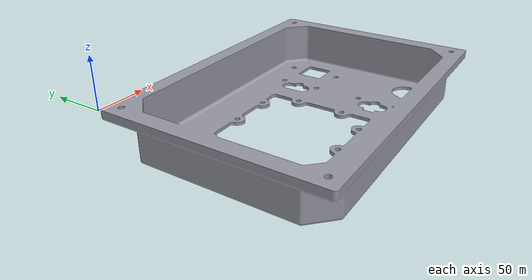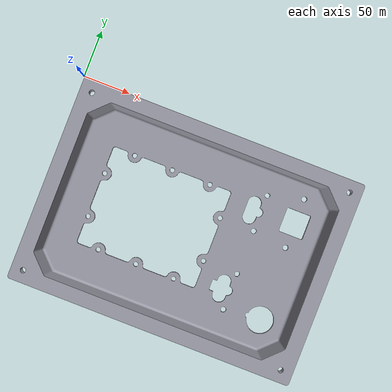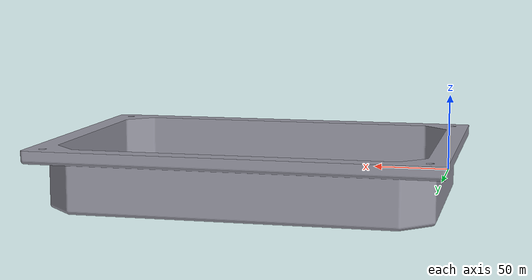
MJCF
<mujoco model="nist_lid">
  <asset>
    <material name="steel_visual_nist_lid" rgba="0.6 0.6 0.65 1.0" specular="0.8" shininess="0.9" reflectance="0.6"/>
    <material name="steel_nist_lid" rgba="0.6 0.6 0.65 0.0" specular="0.8" shininess="0.9" reflectance="0.6"/>
    <mesh name="nist_lid" file="../objects/bigym/nist_lid/collision/nist_lid.obj"/>
    <mesh name="nist_lid_collision_0" file="../objects/bigym/nist_lid/collision/nist_lid_collision_0.obj"/>
    <mesh name="nist_lid_collision_1" file="../objects/bigym/nist_lid/collision/nist_lid_collision_1.obj"/>
    <mesh name="nist_lid_collision_2" file="../objects/bigym/nist_lid/collision/nist_lid_collision_2.obj"/>
    <mesh name="nist_lid_collision_3" file="../objects/bigym/nist_lid/collision/nist_lid_collision_3.obj"/>
    <mesh name="nist_lid_collision_4" file="../objects/bigym/nist_lid/collision/nist_lid_collision_4.obj"/>
    <mesh name="nist_lid_collision_5" file="../objects/bigym/nist_lid/collision/nist_lid_collision_5.obj"/>
    <mesh name="nist_lid_collision_6" file="../objects/bigym/nist_lid/collision/nist_lid_collision_6.obj"/>
    <mesh name="nist_lid_collision_7" file="../objects/bigym/nist_lid/collision/nist_lid_collision_7.obj"/>
    <mesh name="nist_lid_collision_8" file="../objects/bigym/nist_lid/collision/nist_lid_collision_8.obj"/>
    <mesh name="nist_lid_collision_9" file="../objects/bigym/nist_lid/collision/nist_lid_collision_9.obj"/>
    <mesh name="nist_lid_collision_10" file="../objects/bigym/nist_lid/collision/nist_lid_collision_10.obj"/>
    <mesh name="nist_lid_collision_11" file="../objects/bigym/nist_lid/collision/nist_lid_collision_11.obj"/>
    <mesh name="nist_lid_collision_12" file="../objects/bigym/nist_lid/collision/nist_lid_collision_12.obj"/>
    <mesh name="nist_lid_collision_13" file="../objects/bigym/nist_lid/collision/nist_lid_collision_13.obj"/>
    <mesh name="nist_lid_collision_14" file="../objects/bigym/nist_lid/collision/nist_lid_collision_14.obj"/>
    <mesh name="nist_lid_collision_15" file="../objects/bigym/nist_lid/collision/nist_lid_collision_15.obj"/>
    <mesh name="nist_lid_collision_16" file="../objects/bigym/nist_lid/collision/nist_lid_collision_16.obj"/>
    <mesh name="nist_lid_collision_17" file="../objects/bigym/nist_lid/collision/nist_lid_collision_17.obj"/>
    <mesh name="nist_lid_collision_18" file="../objects/bigym/nist_lid/collision/nist_lid_collision_18.obj"/>
    <mesh name="nist_lid_collision_19" file="../objects/bigym/nist_lid/collision/nist_lid_collision_19.obj"/>
    <mesh name="nist_lid_collision_20" file="../objects/bigym/nist_lid/collision/nist_lid_collision_20.obj"/>
    <mesh name="nist_lid_collision_21" file="../objects/bigym/nist_lid/collision/nist_lid_collision_21.obj"/>
    <mesh name="nist_lid_collision_22" file="../objects/bigym/nist_lid/collision/nist_lid_collision_22.obj"/>
    <mesh name="nist_lid_collision_23" file="../objects/bigym/nist_lid/collision/nist_lid_collision_23.obj"/>
    <mesh name="nist_lid_collision_24" file="../objects/bigym/nist_lid/collision/nist_lid_collision_24.obj"/>
    <mesh name="nist_lid_collision_25" file="../objects/bigym/nist_lid/collision/nist_lid_collision_25.obj"/>
    <mesh name="nist_lid_collision_26" file="../objects/bigym/nist_lid/collision/nist_lid_collision_26.obj"/>
    <mesh name="nist_lid_collision_27" file="../objects/bigym/nist_lid/collision/nist_lid_collision_27.obj"/>
    <mesh name="nist_lid_collision_28" file="../objects/bigym/nist_lid/collision/nist_lid_collision_28.obj"/>
    <mesh name="nist_lid_collision_29" file="../objects/bigym/nist_lid/collision/nist_lid_collision_29.obj"/>
    <mesh name="nist_lid_collision_30" file="../objects/bigym/nist_lid/collision/nist_lid_collision_30.obj"/>
    <mesh name="nist_lid_collision_31" file="../objects/bigym/nist_lid/collision/nist_lid_collision_31.obj"/>
    <mesh name="nist_lid_collision_32" file="../objects/bigym/nist_lid/collision/nist_lid_collision_32.obj"/>
    <mesh name="nist_lid_collision_33" file="../objects/bigym/nist_lid/collision/nist_lid_collision_33.obj"/>
    <mesh name="nist_lid_collision_34" file="../objects/bigym/nist_lid/collision/nist_lid_collision_34.obj"/>
    <mesh name="nist_lid_collision_35" file="../objects/bigym/nist_lid/collision/nist_lid_collision_35.obj"/>
    <mesh name="nist_lid_collision_36" file="../objects/bigym/nist_lid/collision/nist_lid_collision_36.obj"/>
    <mesh name="nist_lid_collision_37" file="../objects/bigym/nist_lid/collision/nist_lid_collision_37.obj"/>
    <mesh name="nist_lid_collision_38" file="../objects/bigym/nist_lid/collision/nist_lid_collision_38.obj"/>
    <mesh name="nist_lid_collision_39" file="../objects/bigym/nist_lid/collision/nist_lid_collision_39.obj"/>
    <mesh name="nist_lid_collision_40" file="../objects/bigym/nist_lid/collision/nist_lid_collision_40.obj"/>
    <mesh name="nist_lid_collision_41" file="../objects/bigym/nist_lid/collision/nist_lid_collision_41.obj"/>
    <mesh name="nist_lid_collision_42" file="../objects/bigym/nist_lid/collision/nist_lid_collision_42.obj"/>
    <mesh name="nist_lid_collision_43" file="../objects/bigym/nist_lid/collision/nist_lid_collision_43.obj"/>
    <mesh name="nist_lid_collision_44" file="../objects/bigym/nist_lid/collision/nist_lid_collision_44.obj"/>
    <mesh name="nist_lid_collision_45" file="../objects/bigym/nist_lid/collision/nist_lid_collision_45.obj"/>
    <mesh name="nist_lid_collision_46" file="../objects/bigym/nist_lid/collision/nist_lid_collision_46.obj"/>
    <mesh name="nist_lid_collision_47" file="../objects/bigym/nist_lid/collision/nist_lid_collision_47.obj"/>
    <mesh name="nist_lid_collision_48" file="../objects/bigym/nist_lid/collision/nist_lid_collision_48.obj"/>
    <mesh name="nist_lid_collision_49" file="../objects/bigym/nist_lid/collision/nist_lid_collision_49.obj"/>
    <mesh name="nist_lid_collision_50" file="../objects/bigym/nist_lid/collision/nist_lid_collision_50.obj"/>
    <mesh name="nist_lid_collision_51" file="../objects/bigym/nist_lid/collision/nist_lid_collision_51.obj"/>
    <mesh name="nist_lid_collision_52" file="../objects/bigym/nist_lid/collision/nist_lid_collision_52.obj"/>
    <mesh name="nist_lid_collision_53" file="../objects/bigym/nist_lid/collision/nist_lid_collision_53.obj"/>
    <mesh name="nist_lid_collision_54" file="../objects/bigym/nist_lid/collision/nist_lid_collision_54.obj"/>
    <mesh name="nist_lid_collision_55" file="../objects/bigym/nist_lid/collision/nist_lid_collision_55.obj"/>
    <mesh name="nist_lid_collision_56" file="../objects/bigym/nist_lid/collision/nist_lid_collision_56.obj"/>
    <mesh name="nist_lid_collision_57" file="../objects/bigym/nist_lid/collision/nist_lid_collision_57.obj"/>
    <mesh name="nist_lid_collision_58" file="../objects/bigym/nist_lid/collision/nist_lid_collision_58.obj"/>
    <mesh name="nist_lid_collision_59" file="../objects/bigym/nist_lid/collision/nist_lid_collision_59.obj"/>
    <mesh name="nist_lid_collision_60" file="../objects/bigym/nist_lid/collision/nist_lid_collision_60.obj"/>
    <mesh name="nist_lid_collision_61" file="../objects/bigym/nist_lid/collision/nist_lid_collision_61.obj"/>
    <mesh name="nist_lid_collision_62" file="../objects/bigym/nist_lid/collision/nist_lid_collision_62.obj"/>
    <mesh name="nist_lid_collision_63" file="../objects/bigym/nist_lid/collision/nist_lid_collision_63.obj"/>
    <mesh name="nist_lid_collision_64" file="../objects/bigym/nist_lid/collision/nist_lid_collision_64.obj"/>
    <mesh name="nist_lid_collision_65" file="../objects/bigym/nist_lid/collision/nist_lid_collision_65.obj"/>
    <mesh name="nist_lid_collision_66" file="../objects/bigym/nist_lid/collision/nist_lid_collision_66.obj"/>
    <mesh name="nist_lid_collision_67" file="../objects/bigym/nist_lid/collision/nist_lid_collision_67.obj"/>
    <mesh name="nist_lid_collision_68" file="../objects/bigym/nist_lid/collision/nist_lid_collision_68.obj"/>
    <mesh name="nist_lid_collision_69" file="../objects/bigym/nist_lid/collision/nist_lid_collision_69.obj"/>
    <mesh name="nist_lid_collision_70" file="../objects/bigym/nist_lid/collision/nist_lid_collision_70.obj"/>
    <mesh name="nist_lid_collision_71" file="../objects/bigym/nist_lid/collision/nist_lid_collision_71.obj"/>
    <mesh name="nist_lid_collision_72" file="../objects/bigym/nist_lid/collision/nist_lid_collision_72.obj"/>
    <mesh name="nist_lid_collision_73" file="../objects/bigym/nist_lid/collision/nist_lid_collision_73.obj"/>
    <mesh name="nist_lid_collision_74" file="../objects/bigym/nist_lid/collision/nist_lid_collision_74.obj"/>
    <mesh name="nist_lid_collision_75" file="../objects/bigym/nist_lid/collision/nist_lid_collision_75.obj"/>
    <mesh name="nist_lid_collision_76" file="../objects/bigym/nist_lid/collision/nist_lid_collision_76.obj"/>
    <mesh name="nist_lid_collision_77" file="../objects/bigym/nist_lid/collision/nist_lid_collision_77.obj"/>
    <mesh name="nist_lid_collision_78" file="../objects/bigym/nist_lid/collision/nist_lid_collision_78.obj"/>
    <mesh name="nist_lid_collision_79" file="../objects/bigym/nist_lid/collision/nist_lid_collision_79.obj"/>
    <mesh name="nist_lid_collision_80" file="../objects/bigym/nist_lid/collision/nist_lid_collision_80.obj"/>
    <mesh name="nist_lid_collision_81" file="../objects/bigym/nist_lid/collision/nist_lid_collision_81.obj"/>
    <mesh name="nist_lid_collision_82" file="../objects/bigym/nist_lid/collision/nist_lid_collision_82.obj"/>
    <mesh name="nist_lid_collision_83" file="../objects/bigym/nist_lid/collision/nist_lid_collision_83.obj"/>
    <mesh name="nist_lid_collision_84" file="../objects/bigym/nist_lid/collision/nist_lid_collision_84.obj"/>
    <mesh name="nist_lid_collision_85" file="../objects/bigym/nist_lid/collision/nist_lid_collision_85.obj"/>
    <mesh name="nist_lid_collision_86" file="../objects/bigym/nist_lid/collision/nist_lid_collision_86.obj"/>
    <mesh name="nist_lid_collision_87" file="../objects/bigym/nist_lid/collision/nist_lid_collision_87.obj"/>
    <mesh name="nist_lid_collision_88" file="../objects/bigym/nist_lid/collision/nist_lid_collision_88.obj"/>
    <mesh name="nist_lid_collision_89" file="../objects/bigym/nist_lid/collision/nist_lid_collision_89.obj"/>
    <mesh name="nist_lid_collision_90" file="../objects/bigym/nist_lid/collision/nist_lid_collision_90.obj"/>
    <mesh name="nist_lid_collision_91" file="../objects/bigym/nist_lid/collision/nist_lid_collision_91.obj"/>
    <mesh name="nist_lid_collision_92" file="../objects/bigym/nist_lid/collision/nist_lid_collision_92.obj"/>
    <mesh name="nist_lid_collision_93" file="../objects/bigym/nist_lid/collision/nist_lid_collision_93.obj"/>
    <mesh name="nist_lid_collision_94" file="../objects/bigym/nist_lid/collision/nist_lid_collision_94.obj"/>
    <mesh name="nist_lid_collision_95" file="../objects/bigym/nist_lid/collision/nist_lid_collision_95.obj"/>
    <mesh name="nist_lid_collision_96" file="../objects/bigym/nist_lid/collision/nist_lid_collision_96.obj"/>
    <mesh name="nist_lid_collision_97" file="../objects/bigym/nist_lid/collision/nist_lid_collision_97.obj"/>
    <mesh name="nist_lid_collision_98" file="../objects/bigym/nist_lid/collision/nist_lid_collision_98.obj"/>
    <mesh name="nist_lid_collision_99" file="../objects/bigym/nist_lid/collision/nist_lid_collision_99.obj"/>
    <mesh name="nist_lid_collision_100" file="../objects/bigym/nist_lid/collision/nist_lid_collision_100.obj"/>
    <mesh name="nist_lid_collision_101" file="../objects/bigym/nist_lid/collision/nist_lid_collision_101.obj"/>
    <mesh name="nist_lid_collision_102" file="../objects/bigym/nist_lid/collision/nist_lid_collision_102.obj"/>
    <mesh name="nist_lid_collision_103" file="../objects/bigym/nist_lid/collision/nist_lid_collision_103.obj"/>
    <mesh name="nist_lid_collision_104" file="../objects/bigym/nist_lid/collision/nist_lid_collision_104.obj"/>
    <mesh name="nist_lid_collision_105" file="../objects/bigym/nist_lid/collision/nist_lid_collision_105.obj"/>
    <mesh name="nist_lid_collision_106" file="../objects/bigym/nist_lid/collision/nist_lid_collision_106.obj"/>
    <mesh name="nist_lid_collision_107" file="../objects/bigym/nist_lid/collision/nist_lid_collision_107.obj"/>
    <mesh name="nist_lid_collision_108" file="../objects/bigym/nist_lid/collision/nist_lid_collision_108.obj"/>
    <mesh name="nist_lid_collision_109" file="../objects/bigym/nist_lid/collision/nist_lid_collision_109.obj"/>
    <mesh name="nist_lid_collision_110" file="../objects/bigym/nist_lid/collision/nist_lid_collision_110.obj"/>
    <mesh name="nist_lid_collision_111" file="../objects/bigym/nist_lid/collision/nist_lid_collision_111.obj"/>
    <mesh name="nist_lid_collision_112" file="../objects/bigym/nist_lid/collision/nist_lid_collision_112.obj"/>
    <mesh name="nist_lid_collision_113" file="../objects/bigym/nist_lid/collision/nist_lid_collision_113.obj"/>
    <mesh name="nist_lid_collision_114" file="../objects/bigym/nist_lid/collision/nist_lid_collision_114.obj"/>
    <mesh name="nist_lid_collision_115" file="../objects/bigym/nist_lid/collision/nist_lid_collision_115.obj"/>
    <mesh name="nist_lid_collision_116" file="../objects/bigym/nist_lid/collision/nist_lid_collision_116.obj"/>
    <mesh name="nist_lid_collision_117" file="../objects/bigym/nist_lid/collision/nist_lid_collision_117.obj"/>
    <mesh name="nist_lid_collision_118" file="../objects/bigym/nist_lid/collision/nist_lid_collision_118.obj"/>
    <mesh name="nist_lid_collision_119" file="../objects/bigym/nist_lid/collision/nist_lid_collision_119.obj"/>
    <mesh name="nist_lid_collision_120" file="../objects/bigym/nist_lid/collision/nist_lid_collision_120.obj"/>
    <mesh name="nist_lid_collision_121" file="../objects/bigym/nist_lid/collision/nist_lid_collision_121.obj"/>
    <mesh name="nist_lid_collision_122" file="../objects/bigym/nist_lid/collision/nist_lid_collision_122.obj"/>
    <mesh name="nist_lid_collision_123" file="../objects/bigym/nist_lid/collision/nist_lid_collision_123.obj"/>
    <mesh name="nist_lid_collision_124" file="../objects/bigym/nist_lid/collision/nist_lid_collision_124.obj"/>
    <mesh name="nist_lid_collision_125" file="../objects/bigym/nist_lid/collision/nist_lid_collision_125.obj"/>
    <mesh name="nist_lid_collision_126" file="../objects/bigym/nist_lid/collision/nist_lid_collision_126.obj"/>
    <mesh name="nist_lid_collision_127" file="../objects/bigym/nist_lid/collision/nist_lid_collision_127.obj"/>
    <mesh name="nist_lid_collision_128" file="../objects/bigym/nist_lid/collision/nist_lid_collision_128.obj"/>
    <mesh name="nist_lid_collision_129" file="../objects/bigym/nist_lid/collision/nist_lid_collision_129.obj"/>
    <mesh name="nist_lid_collision_130" file="../objects/bigym/nist_lid/collision/nist_lid_collision_130.obj"/>
    <mesh name="nist_lid_collision_131" file="../objects/bigym/nist_lid/collision/nist_lid_collision_131.obj"/>
    <mesh name="nist_lid_collision_132" file="../objects/bigym/nist_lid/collision/nist_lid_collision_132.obj"/>
    <mesh name="nist_lid_collision_133" file="../objects/bigym/nist_lid/collision/nist_lid_collision_133.obj"/>
    <mesh name="nist_lid_collision_134" file="../objects/bigym/nist_lid/collision/nist_lid_collision_134.obj"/>
  </asset>

  <default class="main">
    <default class="nist_lid">
      <default class="nist_lid_visual">
        <geom type="mesh" contype="0" conaffinity="0" group="2"/>
      </default>
      <default class="nist_lid_collision">
        <geom type="mesh" density="4800" group="3" solref="0.004" solimp="0.95 0.98" condim="3"/>
      </default>
    </default>
  </default>

  <worldbody>
      <body name="nist_lid" pos="0.5 -0.2 1.23" quat="0 1 0 0">
        <freejoint/>
        <geom mesh="nist_lid" class="nist_lid_visual" material="steel_visual_nist_lid"/>
        <geom mesh="nist_lid_collision_0" class="nist_lid_collision" material="steel_nist_lid"/>
        <geom mesh="nist_lid_collision_1" class="nist_lid_collision" material="steel_nist_lid"/>
        <geom mesh="nist_lid_collision_2" class="nist_lid_collision" material="steel_nist_lid"/>
        <geom mesh="nist_lid_collision_3" class="nist_lid_collision" material="steel_nist_lid"/>
        <geom mesh="nist_lid_collision_4" class="nist_lid_collision" material="steel_nist_lid"/>
        <geom mesh="nist_lid_collision_5" class="nist_lid_collision" material="steel_nist_lid"/>
        <geom mesh="nist_lid_collision_6" class="nist_lid_collision" material="steel_nist_lid"/>
        <geom mesh="nist_lid_collision_7" class="nist_lid_collision" material="steel_nist_lid"/>
        <geom mesh="nist_lid_collision_8" class="nist_lid_collision" material="steel_nist_lid"/>
        <geom mesh="nist_lid_collision_9" class="nist_lid_collision" material="steel_nist_lid"/>
        <geom mesh="nist_lid_collision_10" class="nist_lid_collision" material="steel_nist_lid"/>
        <geom mesh="nist_lid_collision_11" class="nist_lid_collision" material="steel_nist_lid"/>
        <geom mesh="nist_lid_collision_12" class="nist_lid_collision" material="steel_nist_lid"/>
        <geom mesh="nist_lid_collision_13" class="nist_lid_collision" material="steel_nist_lid"/>
        <geom mesh="nist_lid_collision_14" class="nist_lid_collision" material="steel_nist_lid"/>
        <geom mesh="nist_lid_collision_15" class="nist_lid_collision" material="steel_nist_lid"/>
        <geom mesh="nist_lid_collision_16" class="nist_lid_collision" material="steel_nist_lid"/>
        <geom mesh="nist_lid_collision_17" class="nist_lid_collision" material="steel_nist_lid"/>
        <geom mesh="nist_lid_collision_18" class="nist_lid_collision" material="steel_nist_lid"/>
        <geom mesh="nist_lid_collision_19" class="nist_lid_collision" material="steel_nist_lid"/>
        <geom mesh="nist_lid_collision_20" class="nist_lid_collision" material="steel_nist_lid"/>
        <geom mesh="nist_lid_collision_21" class="nist_lid_collision" material="steel_nist_lid"/>
        <geom mesh="nist_lid_collision_22" class="nist_lid_collision" material="steel_nist_lid"/>
        <geom mesh="nist_lid_collision_23" class="nist_lid_collision" material="steel_nist_lid"/>
        <geom mesh="nist_lid_collision_24" class="nist_lid_collision" material="steel_nist_lid"/>
        <geom mesh="nist_lid_collision_25" class="nist_lid_collision" material="steel_nist_lid"/>
        <geom mesh="nist_lid_collision_26" class="nist_lid_collision" material="steel_nist_lid"/>
        <geom mesh="nist_lid_collision_27" class="nist_lid_collision" material="steel_nist_lid"/>
        <geom mesh="nist_lid_collision_28" class="nist_lid_collision" material="steel_nist_lid"/>
        <geom mesh="nist_lid_collision_29" class="nist_lid_collision" material="steel_nist_lid"/>
        <geom mesh="nist_lid_collision_30" class="nist_lid_collision" material="steel_nist_lid"/>
        <geom mesh="nist_lid_collision_31" class="nist_lid_collision" material="steel_nist_lid"/>
        <geom mesh="nist_lid_collision_32" class="nist_lid_collision" material="steel_nist_lid"/>
        <geom mesh="nist_lid_collision_33" class="nist_lid_collision" material="steel_nist_lid"/>
        <geom mesh="nist_lid_collision_34" class="nist_lid_collision" material="steel_nist_lid"/>
        <geom mesh="nist_lid_collision_35" class="nist_lid_collision" material="steel_nist_lid"/>
        <geom mesh="nist_lid_collision_36" class="nist_lid_collision" material="steel_nist_lid"/>
        <geom mesh="nist_lid_collision_37" class="nist_lid_collision" material="steel_nist_lid"/>
        <geom mesh="nist_lid_collision_38" class="nist_lid_collision" material="steel_nist_lid"/>
        <geom mesh="nist_lid_collision_39" class="nist_lid_collision" material="steel_nist_lid"/>
        <geom mesh="nist_lid_collision_40" class="nist_lid_collision" material="steel_nist_lid"/>
        <geom mesh="nist_lid_collision_41" class="nist_lid_collision" material="steel_nist_lid"/>
        <geom mesh="nist_lid_collision_42" class="nist_lid_collision" material="steel_nist_lid"/>
        <geom mesh="nist_lid_collision_43" class="nist_lid_collision" material="steel_nist_lid"/>
        <geom mesh="nist_lid_collision_44" class="nist_lid_collision" material="steel_nist_lid"/>
        <geom mesh="nist_lid_collision_45" class="nist_lid_collision" material="steel_nist_lid"/>
        <geom mesh="nist_lid_collision_46" class="nist_lid_collision" material="steel_nist_lid"/>
        <geom mesh="nist_lid_collision_47" class="nist_lid_collision" material="steel_nist_lid"/>
        <geom mesh="nist_lid_collision_48" class="nist_lid_collision" material="steel_nist_lid"/>
        <geom mesh="nist_lid_collision_49" class="nist_lid_collision" material="steel_nist_lid"/>
        <geom mesh="nist_lid_collision_50" class="nist_lid_collision" material="steel_nist_lid"/>
        <geom mesh="nist_lid_collision_51" class="nist_lid_collision" material="steel_nist_lid"/>
        <geom mesh="nist_lid_collision_52" class="nist_lid_collision" material="steel_nist_lid"/>
        <geom mesh="nist_lid_collision_53" class="nist_lid_collision" material="steel_nist_lid"/>
        <geom mesh="nist_lid_collision_54" class="nist_lid_collision" material="steel_nist_lid"/>
        <geom mesh="nist_lid_collision_55" class="nist_lid_collision" material="steel_nist_lid"/>
        <geom mesh="nist_lid_collision_56" class="nist_lid_collision" material="steel_nist_lid"/>
        <geom mesh="nist_lid_collision_57" class="nist_lid_collision" material="steel_nist_lid"/>
        <geom mesh="nist_lid_collision_58" class="nist_lid_collision" material="steel_nist_lid"/>
        <geom mesh="nist_lid_collision_59" class="nist_lid_collision" material="steel_nist_lid"/>
        <geom mesh="nist_lid_collision_60" class="nist_lid_collision" material="steel_nist_lid"/>
        <geom mesh="nist_lid_collision_61" class="nist_lid_collision" material="steel_nist_lid"/>
        <geom mesh="nist_lid_collision_62" class="nist_lid_collision" material="steel_nist_lid"/>
        <geom mesh="nist_lid_collision_63" class="nist_lid_collision" material="steel_nist_lid"/>
        <geom mesh="nist_lid_collision_64" class="nist_lid_collision" material="steel_nist_lid"/>
        <geom mesh="nist_lid_collision_65" class="nist_lid_collision" material="steel_nist_lid"/>
        <geom mesh="nist_lid_collision_66" class="nist_lid_collision" material="steel_nist_lid"/>
        <geom mesh="nist_lid_collision_67" class="nist_lid_collision" material="steel_nist_lid"/>
        <geom mesh="nist_lid_collision_68" class="nist_lid_collision" material="steel_nist_lid"/>
        <geom mesh="nist_lid_collision_69" class="nist_lid_collision" material="steel_nist_lid"/>
        <geom mesh="nist_lid_collision_70" class="nist_lid_collision" material="steel_nist_lid"/>
        <geom mesh="nist_lid_collision_71" class="nist_lid_collision" material="steel_nist_lid"/>
        <geom mesh="nist_lid_collision_72" class="nist_lid_collision" material="steel_nist_lid"/>
        <geom mesh="nist_lid_collision_73" class="nist_lid_collision" material="steel_nist_lid"/>
        <geom mesh="nist_lid_collision_74" class="nist_lid_collision" material="steel_nist_lid"/>
        <geom mesh="nist_lid_collision_75" class="nist_lid_collision" material="steel_nist_lid"/>
        <geom mesh="nist_lid_collision_76" class="nist_lid_collision" material="steel_nist_lid"/>
        <geom mesh="nist_lid_collision_77" class="nist_lid_collision" material="steel_nist_lid"/>
        <geom mesh="nist_lid_collision_78" class="nist_lid_collision" material="steel_nist_lid"/>
        <geom mesh="nist_lid_collision_79" class="nist_lid_collision" material="steel_nist_lid"/>
        <geom mesh="nist_lid_collision_80" class="nist_lid_collision" material="steel_nist_lid"/>
        <geom mesh="nist_lid_collision_81" class="nist_lid_collision" material="steel_nist_lid"/>
        <geom mesh="nist_lid_collision_82" class="nist_lid_collision" material="steel_nist_lid"/>
        <geom mesh="nist_lid_collision_83" class="nist_lid_collision" material="steel_nist_lid"/>
        <geom mesh="nist_lid_collision_84" class="nist_lid_collision" material="steel_nist_lid"/>
        <geom mesh="nist_lid_collision_85" class="nist_lid_collision" material="steel_nist_lid"/>
        <geom mesh="nist_lid_collision_86" class="nist_lid_collision" material="steel_nist_lid"/>
        <geom mesh="nist_lid_collision_87" class="nist_lid_collision" material="steel_nist_lid"/>
        <geom mesh="nist_lid_collision_88" class="nist_lid_collision" material="steel_nist_lid"/>
        <geom mesh="nist_lid_collision_89" class="nist_lid_collision" material="steel_nist_lid"/>
        <geom mesh="nist_lid_collision_90" class="nist_lid_collision" material="steel_nist_lid"/>
        <geom mesh="nist_lid_collision_91" class="nist_lid_collision" material="steel_nist_lid"/>
        <geom mesh="nist_lid_collision_92" class="nist_lid_collision" material="steel_nist_lid"/>
        <geom mesh="nist_lid_collision_93" class="nist_lid_collision" material="steel_nist_lid"/>
        <geom mesh="nist_lid_collision_94" class="nist_lid_collision" material="steel_nist_lid"/>
        <geom mesh="nist_lid_collision_95" class="nist_lid_collision" material="steel_nist_lid"/>
        <geom mesh="nist_lid_collision_96" class="nist_lid_collision" material="steel_nist_lid"/>
        <geom mesh="nist_lid_collision_97" class="nist_lid_collision" material="steel_nist_lid"/>
        <geom mesh="nist_lid_collision_98" class="nist_lid_collision" material="steel_nist_lid"/>
        <geom mesh="nist_lid_collision_99" class="nist_lid_collision" material="steel_nist_lid"/>
        <geom mesh="nist_lid_collision_100" class="nist_lid_collision" material="steel_nist_lid"/>
        <geom mesh="nist_lid_collision_101" class="nist_lid_collision" material="steel_nist_lid"/>
        <geom mesh="nist_lid_collision_102" class="nist_lid_collision" material="steel_nist_lid"/>
        <geom mesh="nist_lid_collision_103" class="nist_lid_collision" material="steel_nist_lid"/>
        <geom mesh="nist_lid_collision_104" class="nist_lid_collision" material="steel_nist_lid"/>
        <geom mesh="nist_lid_collision_105" class="nist_lid_collision" material="steel_nist_lid"/>
        <geom mesh="nist_lid_collision_106" class="nist_lid_collision" material="steel_nist_lid"/>
        <geom mesh="nist_lid_collision_107" class="nist_lid_collision" material="steel_nist_lid"/>
        <geom mesh="nist_lid_collision_108" class="nist_lid_collision" material="steel_nist_lid"/>
        <geom mesh="nist_lid_collision_109" class="nist_lid_collision" material="steel_nist_lid"/>
        <geom mesh="nist_lid_collision_110" class="nist_lid_collision" material="steel_nist_lid"/>
        <geom mesh="nist_lid_collision_111" class="nist_lid_collision" material="steel_nist_lid"/>
        <geom mesh="nist_lid_collision_112" class="nist_lid_collision" material="steel_nist_lid"/>
        <geom mesh="nist_lid_collision_113" class="nist_lid_collision" material="steel_nist_lid"/>
        <geom mesh="nist_lid_collision_114" class="nist_lid_collision" material="steel_nist_lid"/>
        <geom mesh="nist_lid_collision_115" class="nist_lid_collision" material="steel_nist_lid"/>
        <geom mesh="nist_lid_collision_116" class="nist_lid_collision" material="steel_nist_lid"/>
        <geom mesh="nist_lid_collision_117" class="nist_lid_collision" material="steel_nist_lid"/>
        <geom mesh="nist_lid_collision_118" class="nist_lid_collision" material="steel_nist_lid"/>
        <geom mesh="nist_lid_collision_119" class="nist_lid_collision" material="steel_nist_lid"/>
        <geom mesh="nist_lid_collision_120" class="nist_lid_collision" material="steel_nist_lid"/>
        <geom mesh="nist_lid_collision_121" class="nist_lid_collision" material="steel_nist_lid"/>
        <geom mesh="nist_lid_collision_122" class="nist_lid_collision" material="steel_nist_lid"/>
        <geom mesh="nist_lid_collision_123" class="nist_lid_collision" material="steel_nist_lid"/>
        <geom mesh="nist_lid_collision_124" class="nist_lid_collision" material="steel_nist_lid"/>
        <geom mesh="nist_lid_collision_125" class="nist_lid_collision" material="steel_nist_lid"/>
        <geom mesh="nist_lid_collision_126" class="nist_lid_collision" material="steel_nist_lid"/>
        <geom mesh="nist_lid_collision_127" class="nist_lid_collision" material="steel_nist_lid"/>
        <geom mesh="nist_lid_collision_128" class="nist_lid_collision" material="steel_nist_lid"/>
        <geom mesh="nist_lid_collision_129" class="nist_lid_collision" material="steel_nist_lid"/>
        <geom mesh="nist_lid_collision_130" class="nist_lid_collision" material="steel_nist_lid"/>
        <geom mesh="nist_lid_collision_131" class="nist_lid_collision" material="steel_nist_lid"/>
        <geom mesh="nist_lid_collision_132" class="nist_lid_collision" material="steel_nist_lid"/>
        <geom mesh="nist_lid_collision_133" class="nist_lid_collision" material="steel_nist_lid"/>
        <geom mesh="nist_lid_collision_134" class="nist_lid_collision" material="steel_nist_lid"/>
      </body>
  </worldbody>
</mujoco>
